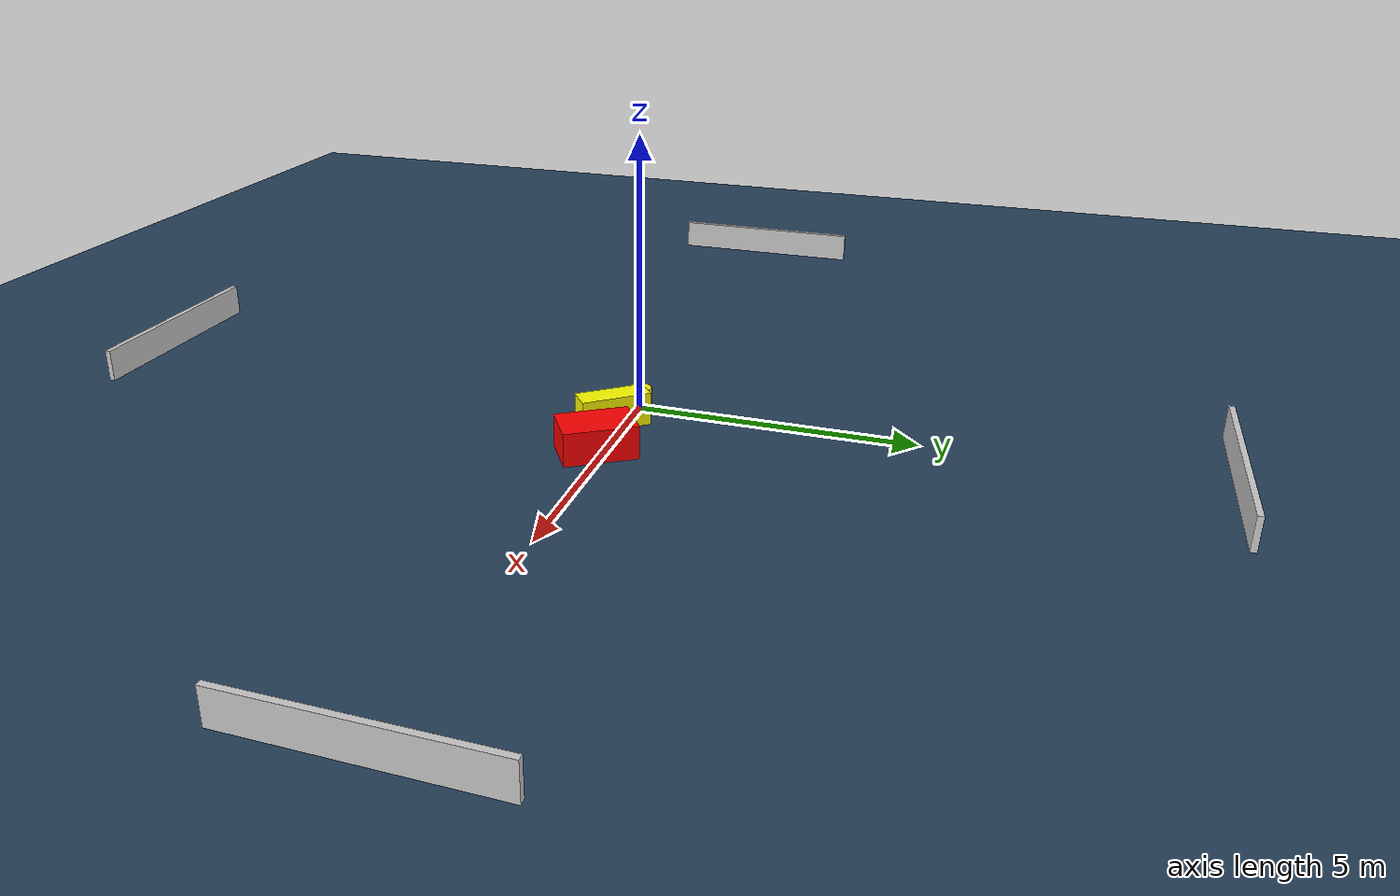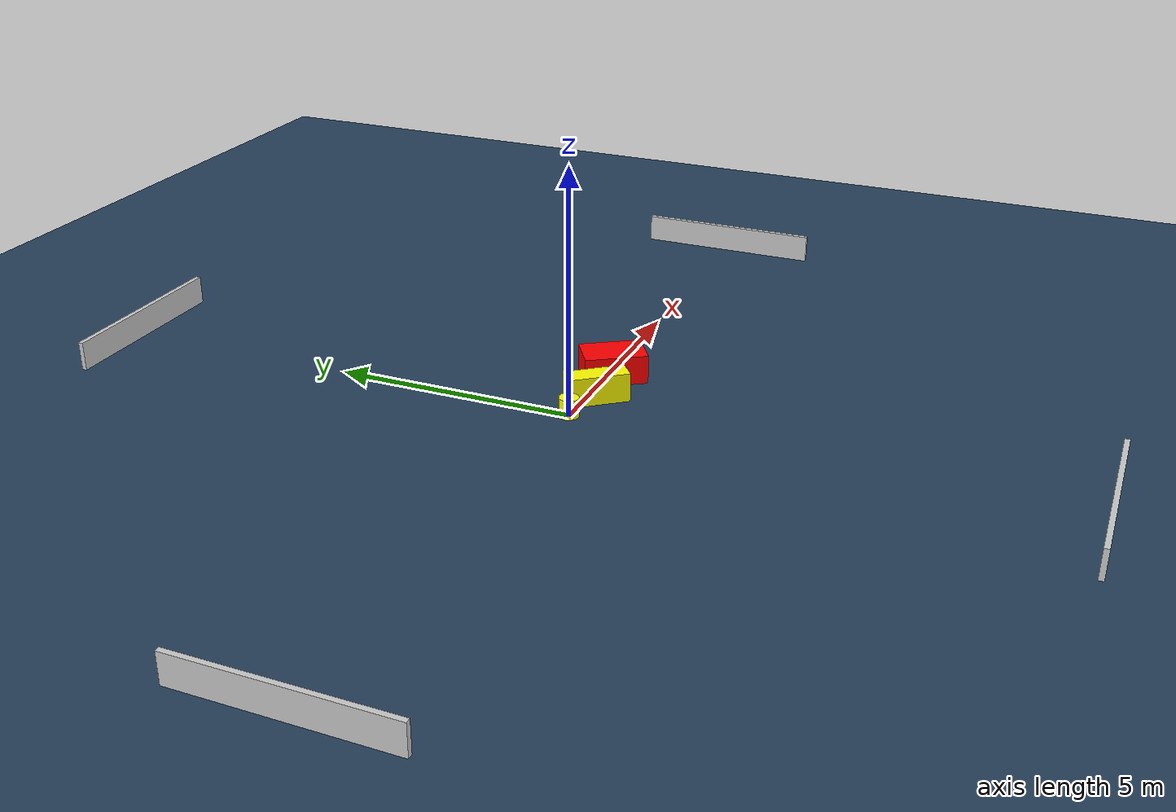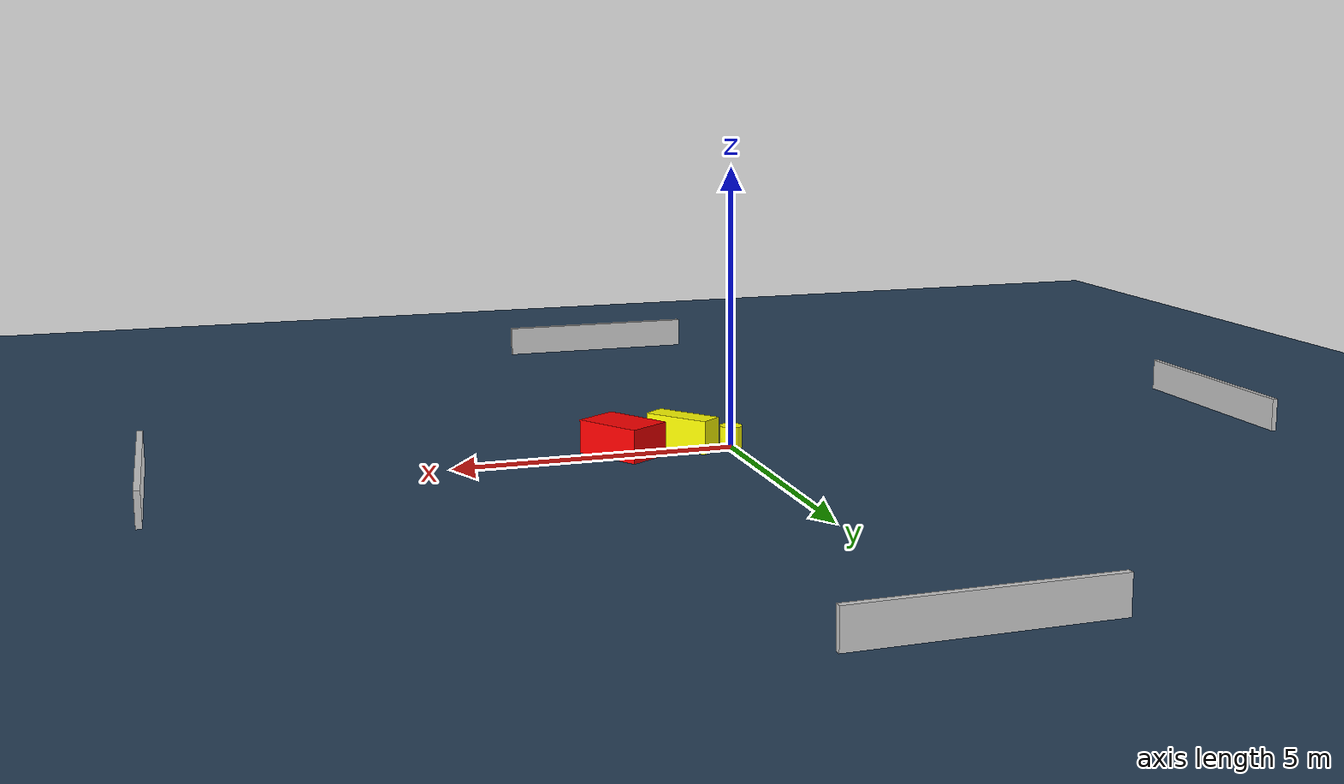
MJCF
<?xml version="1.0" ?>
<mujoco model="generated_environment">
  <option timestep="0.01" integrator="RK4" cone="elliptic"/>
  <default>
    <geom density="1"/>
  </default>
  <asset>
    <texture builtin="gradient" height="3072" name="skybox" rgb1="0.3 0.5 0.7" rgb2="0 0 0" type="skybox" width="512"/>
    <texture builtin="checker" height="300" name="groundplane" rgb1="0.2 0.3 0.4" rgb2="0.1 0.2 0.3" type="2d" width="300"/>
    <material name="groundplane" reflectance="0.2" texrepeat="5 5" texture="groundplane"/>
  </asset>
  <worldbody>
    <light dir="0 0 -1" directional="true" pos="0 0 1.5"/>
    <geom condim="3" friction="0.5 0.005 0.001" material="groundplane" name="floor" pos="0 0 0" size="0 0 0.05" type="plane"/>
    <body name="walls">
      <geom name="wall_1" condim="4" pos="-10.0 0.0 0.3" rgba="0.800000011920929 0.800000011920929 0.800000011920929 1.0" size="0.05 2.0 0.3" type="box"/>
      <geom name="wall_2" condim="4" pos="10.0 0.0 0.3" rgba="0.800000011920929 0.800000011920929 0.800000011920929 1.0" size="0.05 2.0 0.3" type="box"/>
      <geom name="wall_3" condim="4" pos="0.0 -10.0 0.3" rgba="0.800000011920929 0.800000011920929 0.800000011920929 1.0" size="2.0 0.05 0.3" type="box"/>
      <geom name="wall_4" condim="4" pos="0.0 10.0 0.3" rgba="0.800000011920929 0.800000011920929 0.800000011920929 1.0" size="2.0 0.05 0.3" type="box"/>
    </body>
    <body name="robot">
      <joint name="joint_x" type="slide" pos="0 0 0" axis="1 0 0"/>
      <joint name="joint_y" type="slide" pos="0 0 0" axis="0 1 0"/>
      <geom name="robot" type="cylinder" pos="0.0 0.0 0.2" size="0.2 0.2 0.0" mass="5.0" friction="1.0 0.005 0.0001" condim="4" rgba="1.0 1.0 0.0 1.0"/>
    </body>
    <body name="obstacle_1_movable">
      <geom name="obstacle_1_movable" condim="4" pos="0.8378747973734436 -0.23101525307659646 0.3" euler="0 0 38.48875127107969" friction="0.0 0.005 0.001" rgba="1.0 1.0 0.0 1.0" size="0.2178588723120684 0.6282497013307395 0.3" type="box" mass="0.1"/>
      <joint type="free"/>
    </body>
    <body name="obstacle_2_static">
      <geom name="obstacle_2_static" condim="4" pos="1.9658508993516344 -0.12895800661649978 0.3" euler="0 0 302.6055351222712" friction="0.0 0.005 0.001" rgba="1.0 0.0 0.0 1.0" size="0.6444030007457242 0.41199565475043465 0.3" type="box"/>
    </body>
  </worldbody>
  <actuator>
    <motor name="actuator_x" joint="joint_x" gear="1" ctrlrange="-1 1"/>
    <motor name="actuator_y" joint="joint_y" gear="1" ctrlrange="-1 1"/>
  </actuator>
</mujoco>
